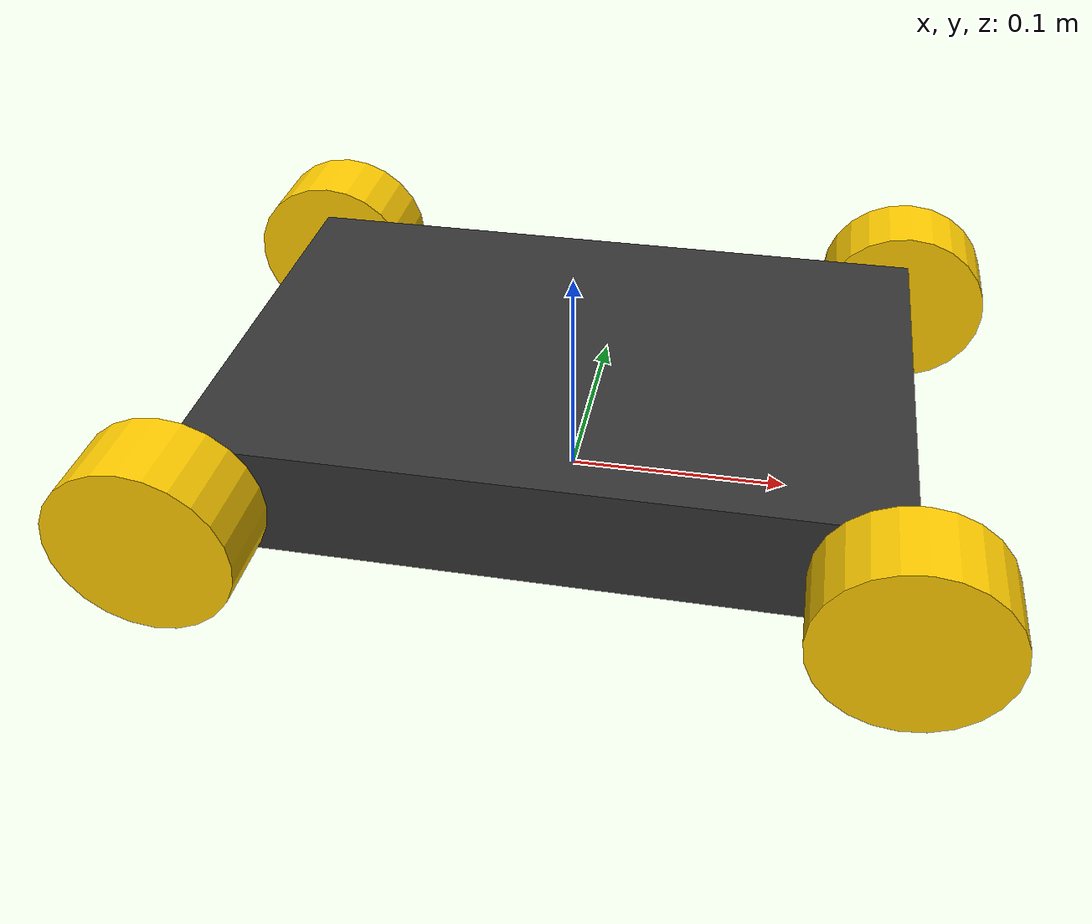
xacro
<?xml version="1.0"?>
<robot name="mecanum_robot" xmlns:xacro="http://www.ros.org/wiki/xacro">

  <xacro:include filename="$(find your_robot_package)/urdf/mecanum_wheel.xacro" />

  <!-- Base Link -->
  <link name="base_footprint"/>

  <joint name="base_joint" type="fixed">
    <parent link="base_footprint"/>
    <child link="base_link"/>
    <origin xyz="0 0 0.04" rpy="0 0 0"/>
  </joint>

  <link name="base_link">
    <inertial>
      <origin xyz="0 0 0" rpy="0 0 0"/>
      <mass value="2.0"/>
      <inertia ixx="0.01" ixy="0" ixz="0" iyy="0.01" iyz="0" izz="0.02"/>
    </inertial>
    <visual>
      <geometry>
        <box size="0.30 0.20 0.05"/>
      </geometry>
      <material name="chassis_color">
        <color rgba="0.2 0.2 0.2 1.0"/>
      </material>
    </visual>
    <collision>
      <geometry>
        <box size="0.30 0.20 0.05"/>
      </geometry>
    </collision>
  </link>

  <!-- Instantiate 4 Wheels -->
  <xacro:mecanum_wheel prefix="front_left"  parent_link="base_link" x_reflect="1"  y_reflect="1" />
  <xacro:mecanum_wheel prefix="front_right" parent_link="base_link" x_reflect="1"  y_reflect="-1" />
  <xacro:mecanum_wheel prefix="rear_left"   parent_link="base_link" x_reflect="-1" y_reflect="1" />
  <xacro:mecanum_wheel prefix="rear_right"  parent_link="base_link" x_reflect="-1" y_reflect="-1" />

  <!-- Gazebo Planar Move Plugin for Mecanum Drive Simulation -->
  <gazebo>
    <plugin name="object_controller" filename="libgazebo_ros_planar_move.so">
      <commandTopic>cmd_vel</commandTopic>
      <odometryTopic>odom</odometryTopic>
      <odometryFrame>odom</odometryFrame>
      <odometryRate>20.0</odometryRate>
      <robotBaseFrame>base_footprint</robotBaseFrame>
    </plugin>
  </gazebo>

</robot>

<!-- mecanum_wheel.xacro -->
<robot xmlns:xacro="http://www.ros.org/wiki/xacro">

  <!-- Wheel Properties from Specifications -->
  <xacro:property name="wheel_mass" value="0.044" /> <!-- 44 grams -->
  <xacro:property name="wheel_radius" value="0.040" /> <!-- 80mm outer diameter -->
  <xacro:property name="wheel_width" value="0.037" /> <!-- 37mm thickness -->

  <!-- Reusable Wheel Macro -->
  <xacro:macro name="mecanum_wheel" params="prefix parent_link x_reflect y_reflect">

    <joint name="${prefix}_wheel_joint" type="continuous">
      <parent link="${parent_link}"/>
      <child link="${prefix}_wheel_link"/>
      <origin xyz="${x_reflect * 0.15} ${y_reflect * 0.12} 0" rpy="0 0 0"/>
      <axis xyz="0 1 0"/>
    </joint>

    <link name="${prefix}_wheel_link">
      <inertial>
        <origin xyz="0 0 0" rpy="0 0 0"/>
        <mass value="${wheel_mass}"/>
        <!-- Solid cylinder inertia calculations -->
        <inertia
          ixx="0.0000226" ixy="0.0" ixz="0.0"
          iyy="0.0000352" iyz="0.0"
          izz="0.0000226"/>
      </inertial>

      <visual>
        <origin xyz="0 0 0" rpy="1.57079632679 0 0"/>
        <geometry>
          <cylinder radius="${wheel_radius}" length="${wheel_width}"/>
        </geometry>
        <material name="yellow">
          <color rgba="1.0 0.8 0.0 1.0"/>
        </material>
      </visual>

      <collision>
        <origin xyz="0 0 0" rpy="1.57079632679 0 0"/>
        <geometry>
          <cylinder radius="${wheel_radius}" length="${wheel_width}"/>
        </geometry>
      </collision>
    </link>

    <!-- Gazebo Properties -->
    <gazebo reference="${prefix}_wheel_link">
      <material>Gazebo/Yellow</material>
      <mu1>0.5</mu1>
      <mu2>0.5</mu2>
      <kp>1000000.0</kp>
      <kd>100.0</kd>
    </gazebo>

  </xacro:macro>

</robot>
